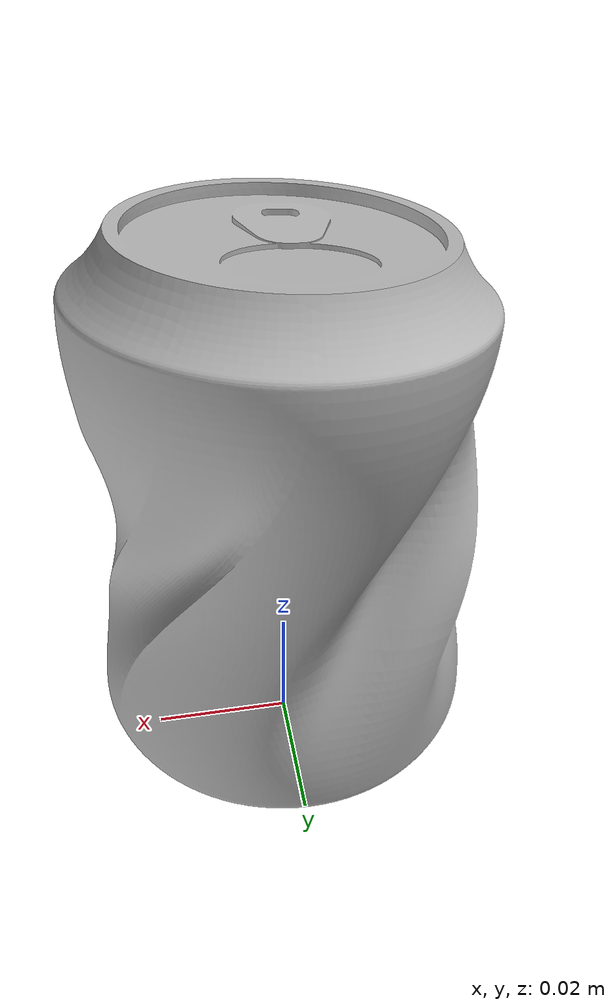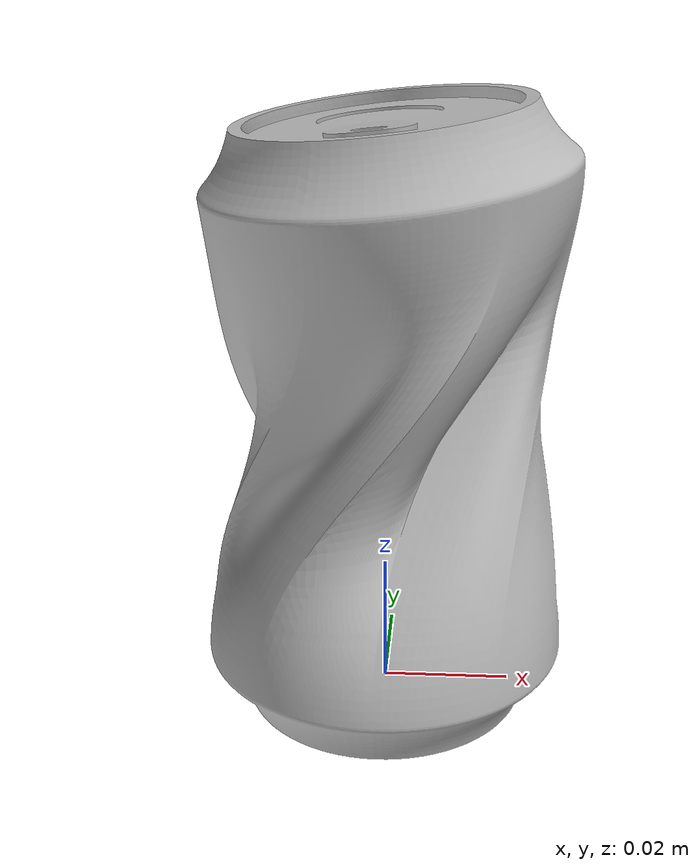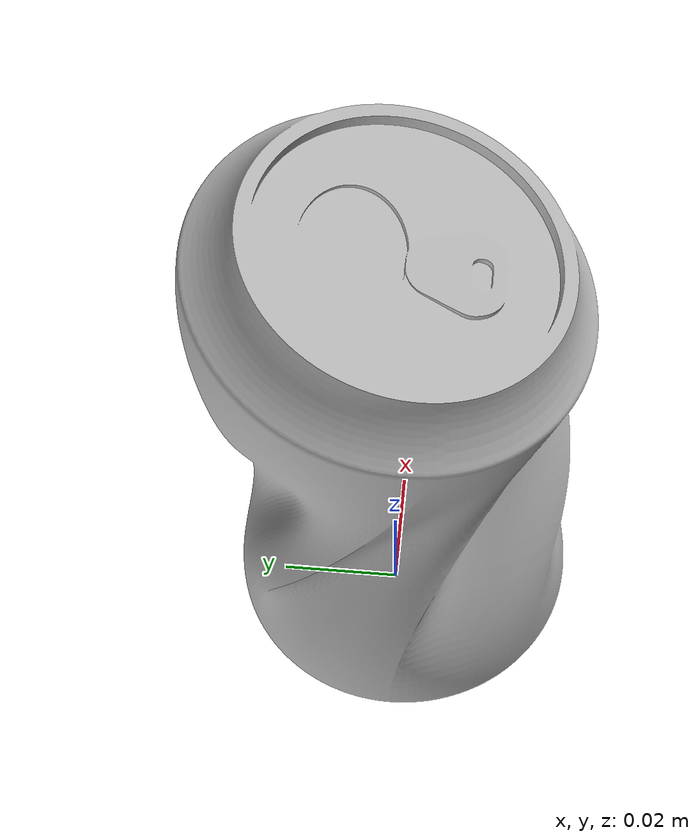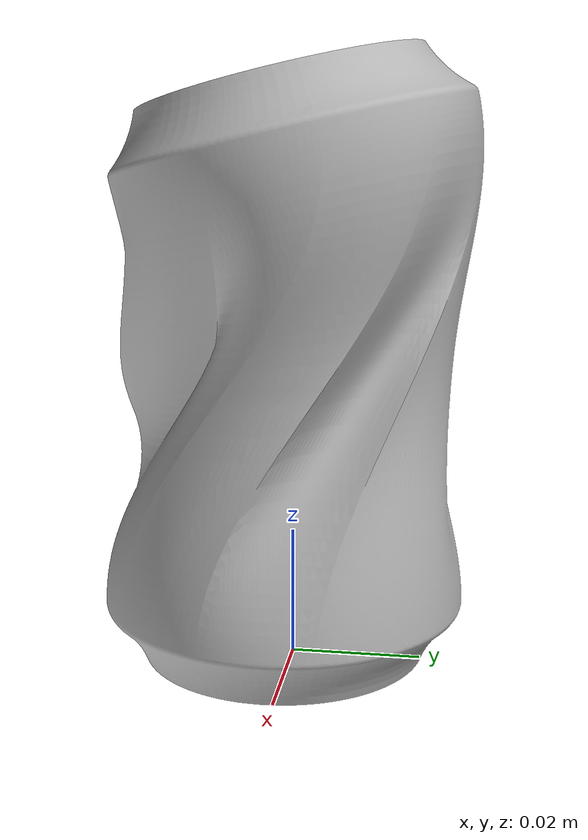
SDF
<?xml version="1.0" ?>
<sdf version="1.5">
  <model name="mountain_dew_can">
    <link name="link">
      <inertial>
        <pose>0 0 0.06 0 0 0</pose>
        <mass>0.05</mass>
        <inertia>
          <ixx>0.2</ixx>
          <ixy>0</ixy>
          <ixz>0</ixz>
          <iyy>0.2</iyy>
          <iyz>0</iyz>
          <izz>0.13</izz>
        </inertia>
      </inertial>
      <collision name="collision">
        <pose>0 0 0.047 0 0 0</pose>
        <geometry>
          <cylinder>
            <radius>.028</radius>
            <length>.095</length>
          </cylinder>
        </geometry>
        <surface>
         <friction>
            <ode>
              <mu>1.0</mu>
              <mu2>1.0</mu2>
            </ode>
          </friction>
          <contact>
            <ode>
              <kp>10000000.0</kp>
              <kd>1.0</kd>
              <min_depth>0.001</min_depth>
              <max_vel>0.1</max_vel>
            </ode>
          </contact>

        </surface>
      </collision>
      <visual name="visual">
        <pose>0 0 0 0 0 0</pose>
        <geometry>
          <mesh>
            <uri>model://cans/mountain_dew_can_crushed/meshes/pepsi_can.dae</uri>
          </mesh>
        </geometry>
      </visual>
    </link>
  </model>
</sdf>
